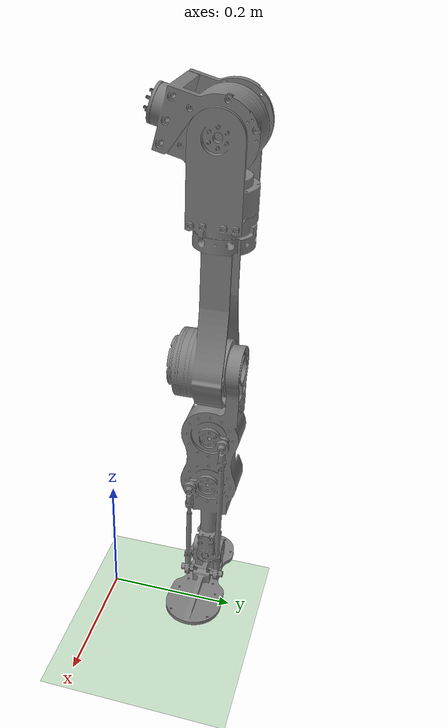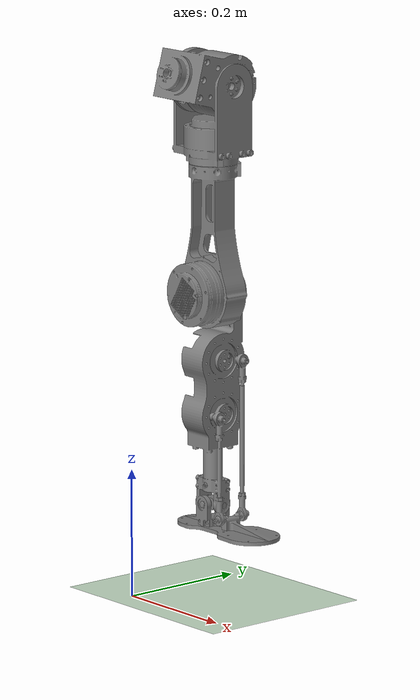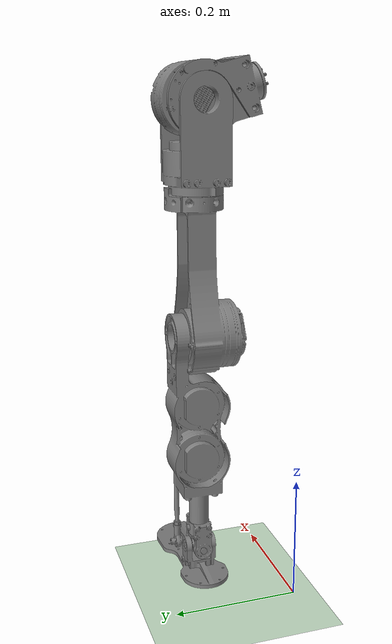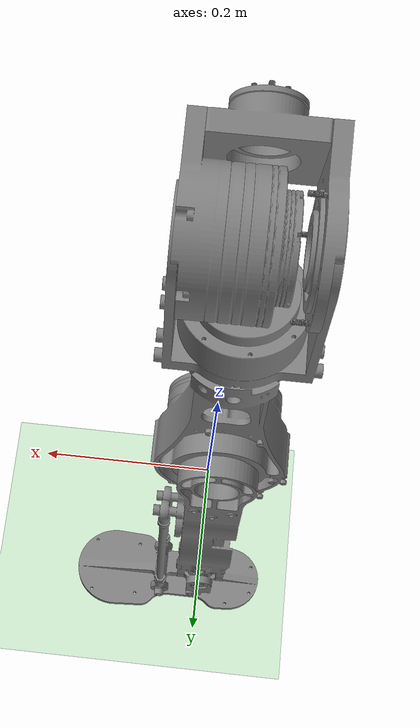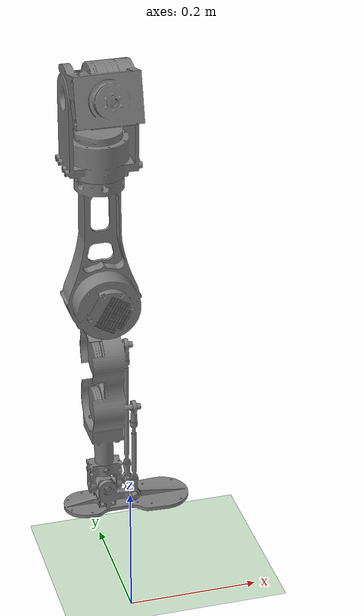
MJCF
<mujoco model="left_leg">
  <option gravity="0 0 -9.81" />
  <compiler angle="degree" meshdir="meshes/"/>
  <option timestep="0.001"></option>
  <statistic extent="0.3" center="0.3 0 0" meansize=".03" />
  <asset>
    <mesh name="Left_Hip_Pitch_1" file="Left_Hip_Pitch_1.stl" scale="0.001 0.001 0.001"/>
    <mesh name="Left_Link2_Hip_1" file="Left_Link2_Hip_1.stl" scale="0.001 0.001 0.001"/>
    <mesh name="Left_Thigh_1" file="Left_Thigh_1.stl" scale="0.001 0.001 0.001"/>
    <mesh name="Left_Shank_1" file="Left_Shank_1.stl" scale="0.001 0.001 0.001"/>
    <mesh name="Left_Ankle_Roll_1" file="Left_Ankle_Roll_1.stl" scale="0.001 0.001 0.001"/>
    <mesh name="Left_Foot_1" file="Left_Foot_1.stl" scale="0.001 0.001 0.001"/>
  </asset>
  <default>
    <default class="AK8064_actuator">
        <joint damping="0.15" armature="0.231" frictionloss="4.8" />
    </default>

    <default class="AK7010_actuator">
        <joint damping="0.015" armature="0.00414" frictionloss="0.5" />
    </default>

    <default class="AK109_actuator">
        <joint damping="0.15" armature="0.00812" frictionloss="0.5" />
    </default>

    <default class="AK606_actuator">
        <joint damping="0.05" armature="0.00088" frictionloss="0.25" />
    </default>
</default>
  <visual>
        <headlight diffuse="0.6 0.6 0.6" ambient="0.3 0.3 0.3" specular="0 0 0" />
        <rgba haze="0.15 0.25 0.35 1" />
        <global azimuth="-130" elevation="-20" />
  </visual>

    <asset>
        <texture builtin="gradient" height="100" rgb1=".4 .5 .6" rgb2="0 0 0" type="skybox" width="100" />
        <texture name="texplane" type="2d" builtin="checker" rgb1=".2 .3 .4" rgb2=".1 0.15 0.2" width="100" height="100" />
        <material name="MatPlane" reflectance="0.1" texture="texplane" texrepeat="1 1" texuniform="true" />
    </asset>
  <worldbody>
  <geom name="ground" pos="0 0 0" size="5 5 0.05" type="plane" material = "MatPlane" friction= "1 1 0.1" condim="3" conaffinity="1" contype="1" group="2" rgba="0.8 0.9 0.8 1" />
  <light cutoff="1000" diffuse="1 1 1" dir="-0 0 -1.3" directional="true" exponent="1" pos="0 0 1.3" specular=".1 .1 .1" castshadow="false" />
    <body name="Left_Hip_Pitch_1" pos="0 0.089761 0.8" euler = "0 0 0">
      <inertial pos="0.005535 0.05735 -0.014768" quat="0.600093 0.396533 -0.46252 0.518387" mass="1.76429" diaginertia="0.00348932 0.0033391 0.00226458"/>
      <joint name="left_hip_pitch" pos="0 0 0" axis="0 1 0" range="-80 80" actuatorfrcrange="-48 48" class="AK109_actuator" />
      <geom pos="0 -0.089761 0.081437" quat="1 0 0 0" type="mesh" contype="0" conaffinity="0" group="1" density="0" mesh="Left_Hip_Pitch_1"/>
      <body name="Left_Link2_Hip_1" pos="0.0445 0.072444 -0.019412">
        <inertial pos="-0.044636 -1.6e-05 -0.073241" quat="0.707529 -0.000179264 0.00188002 0.706682" mass="1.2918" diaginertia="0.00315201 0.002359 0.00197499"/>
        <joint name="left_hip_roll" pos="0 0 0" axis="1 0 0" range="-15 60" actuatorfrcrange="-48 48" class="AK109_actuator" />
        <geom pos="-0.0445 -0.162205 0.100849" quat="1 0 0 0" type="mesh" contype="0" conaffinity="0" group="1" density="0" mesh="Left_Link2_Hip_1"/>
        <body name="Left_Thigh_1" pos="-0.0445 0 -0.1205">
          <inertial pos="-0.000314 -0.013334 -0.166035" quat="0.726022 -0.0341238 0.0343949 0.685963" mass="1.86739" diaginertia="0.012177 0.0116484 0.00198957"/>
          <joint name="left_hip_yaw" pos="0 0 0" axis="0 0 -1" range="-40 40" actuatorfrcrange="-16 16" class="AK7010_actuator"/>
          <geom pos="0 -0.162205 0.221349" quat="1 0 0 0" type="mesh" contype="0" conaffinity="0" group="1" density="0" mesh="Left_Thigh_1"/>
          <body name="Left_Shank_1" pos="0 0.017 -0.2035">
            <inertial pos="0.0097 -0.013414 -0.2" quat="0.997974 -0.0278253 -0.0288337 -0.0494257" mass="1.95" diaginertia="0.0168582 0.0166804 0.00141145"/>
            <joint name="left_knee" pos="0 0 0" axis="0 1 0" range="-5 120" actuatorfrcrange="-48 48" class="AK109_actuator"/>
            <geom pos="0 -0.179205 0.424849" quat="1 0 0 0" type="mesh" contype="0" conaffinity="0" group="1" density="0" mesh="Left_Shank_1"/>
            <body name="Left_Ankle_Roll_1" pos="0.019 -0.017 -0.335">
              <inertial pos="-0.019 0 0" quat="0 0.707107 0 0.707107" mass="0.040313" diaginertia="7.00901e-06 5.12501e-06 3.4981e-06"/>
              <joint name="left_ankle_roll" pos="0 0 0" axis="-1 0 0" range="-20 20" actuatorfrcrange="-18 18" class="AK606_actuator"/>
              <geom pos="-0.019 -0.162205 0.759849" quat="1 0 0 0" type="mesh" contype="0" conaffinity="0" group="1" density="0" mesh="Left_Ankle_Roll_1"/>
              <body name="Left_Foot_1" pos="-0.019 -0.015 0">
                <inertial pos="0.032254 0.0151022 -0.0319141" quat="0.000188682 0.729142 0.000213619 0.684362" mass="0.343229" diaginertia="0.000946586 0.000877 0.000151414"/>
                <joint name="left_ankle_pitch" pos="0 0 0" axis="0 1 0" range="-30 30" actuatorfrcrange="-18 18" class="AK606_actuator"/>
                <geom pos="0 -0.147205 0.759849" quat="1 0 0 0" type="mesh" contype="0" conaffinity="0" group="1" density="0" mesh="Left_Foot_1"/>
              </body>
            </body>
          </body>
        </body>
      </body>
    </body>
  </worldbody>

    <actuator>
        <motor name="left_hip_pitch_m" joint="left_hip_pitch" ctrlrange="-48 48" />
        <motor name="left_hip_roll_m" joint="left_hip_roll" ctrlrange="-48 48" />
        <motor name="left_hip_yaw_m" joint="left_hip_yaw" ctrlrange="-16 16" />
        <motor name="left_knee_m" joint="left_knee" ctrlrange="-48 48" />
        <motor name="left_ankle_roll_m" joint="left_ankle_roll" ctrlrange="-18 18" />
        <motor name="left_ankle_pitch_m" joint="left_ankle_pitch" ctrlrange="-18 18" />
    </actuator>
</mujoco>
